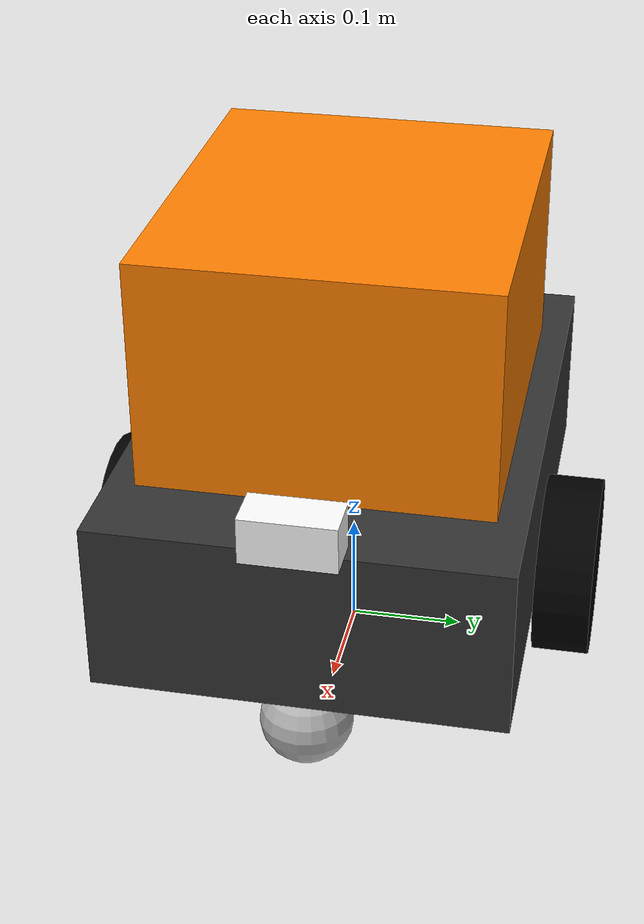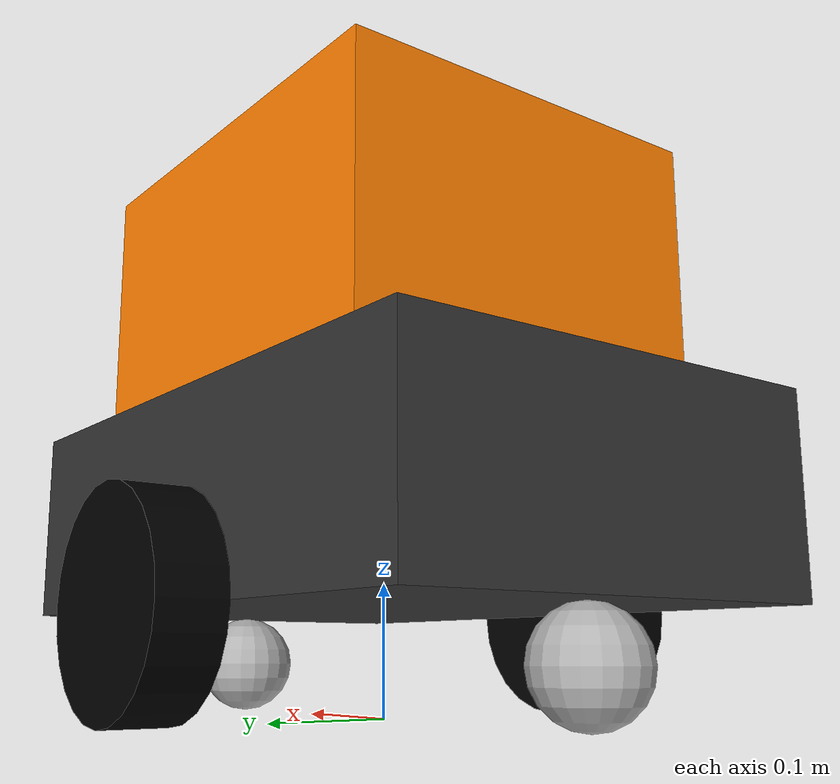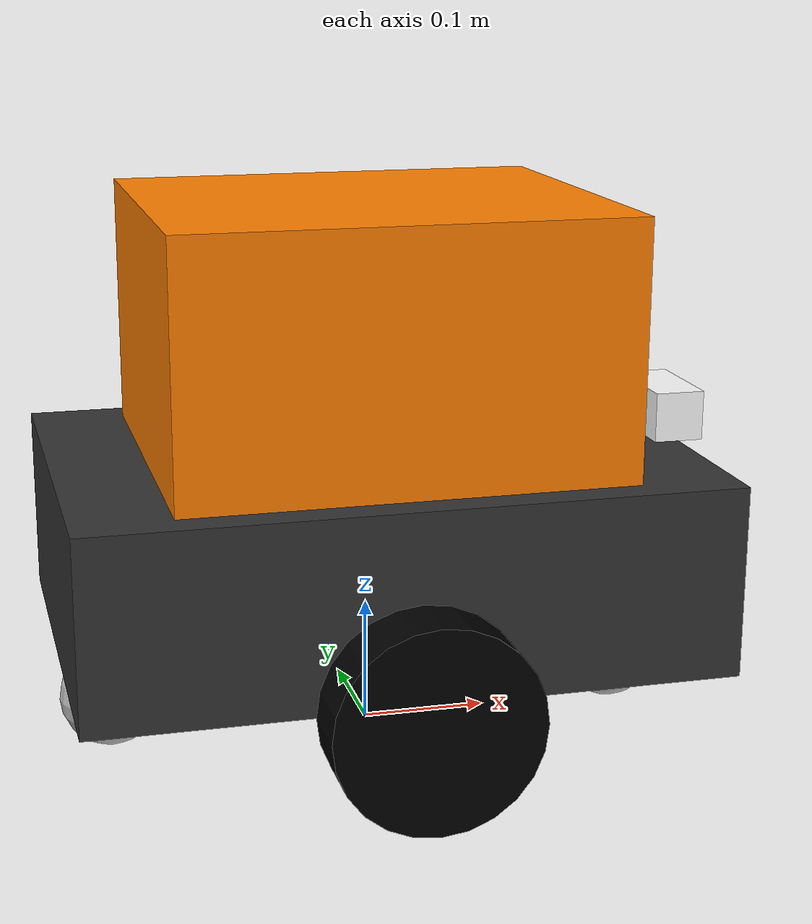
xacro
<?xml version="1.0"?>
<robot name="delivery_robot" xmlns:xacro="http://www.ros.org/wiki/xacro">

  <!-- ==================== PROPERTIES ==================== -->
  <xacro:property name="base_length" value="0.5"/>
  <xacro:property name="base_width"  value="0.35"/>
  <xacro:property name="base_height" value="0.15"/>
  <xacro:property name="base_mass"   value="10.0"/>

  <xacro:property name="wheel_radius" value="0.08"/>
  <xacro:property name="wheel_width"  value="0.05"/>
  <xacro:property name="wheel_mass"   value="1.0"/>
  <xacro:property name="wheel_separation" value="0.40"/>

  <xacro:property name="caster_radius" value="0.04"/>
  <xacro:property name="caster_mass"   value="0.3"/>

  <xacro:property name="lidar_mass"   value="0.2"/>
  <xacro:property name="camera_mass"  value="0.1"/>

  <!-- ==================== MATERIALS ==================== -->
  <material name="dark_grey">
    <color rgba="0.2 0.2 0.2 1.0"/>
  </material>
  <material name="light_grey">
    <color rgba="0.7 0.7 0.7 1.0"/>
  </material>
  <material name="orange">
    <color rgba="1.0 0.5 0.0 1.0"/>
  </material>
  <material name="black">
    <color rgba="0.0 0.0 0.0 1.0"/>
  </material>
  <material name="white">
    <color rgba="1.0 1.0 1.0 1.0"/>
  </material>
  <material name="blue">
    <color rgba="0.0 0.3 0.8 1.0"/>
  </material>

  <!-- ==================== MACROS ==================== -->
  <xacro:macro name="box_inertia" params="m l w h">
    <inertial>
      <mass value="${m}"/>
      <inertia
        ixx="${m*(w*w+h*h)/12}" ixy="0" ixz="0"
        iyy="${m*(l*l+h*h)/12}" iyz="0"
        izz="${m*(l*l+w*w)/12}"/>
    </inertial>
  </xacro:macro>

  <xacro:macro name="cylinder_inertia" params="m r h">
    <inertial>
      <mass value="${m}"/>
      <inertia
        ixx="${m*(3*r*r+h*h)/12}" ixy="0" ixz="0"
        iyy="${m*(3*r*r+h*h)/12}" iyz="0"
        izz="${m*r*r/2}"/>
    </inertial>
  </xacro:macro>

  <xacro:macro name="sphere_inertia" params="m r">
    <inertial>
      <mass value="${m}"/>
      <inertia
        ixx="${2*m*r*r/5}" ixy="0" ixz="0"
        iyy="${2*m*r*r/5}" iyz="0"
        izz="${2*m*r*r/5}"/>
    </inertial>
  </xacro:macro>

  <!-- ==================== BASE LINK ==================== -->
  <link name="base_footprint"/>

  <joint name="base_footprint_joint" type="fixed">
    <parent link="base_footprint"/>
    <child  link="base_link"/>
    <origin xyz="0 0 ${wheel_radius}" rpy="0 0 0"/>
  </joint>

  <link name="base_link">
    <visual>
      <origin xyz="0 0 ${base_height/2}" rpy="0 0 0"/>
      <geometry>
        <box size="${base_length} ${base_width} ${base_height}"/>
      </geometry>
      <material name="dark_grey"/>
    </visual>
    <collision>
      <origin xyz="0 0 ${base_height/2}" rpy="0 0 0"/>
      <geometry>
        <box size="${base_length} ${base_width} ${base_height}"/>
      </geometry>
    </collision>
    <xacro:box_inertia m="${base_mass}" l="${base_length}" w="${base_width}" h="${base_height}"/>
  </link>

  <!-- ==================== DELIVERY BOX ==================== -->
  <link name="cargo_box">
    <visual>
      <origin xyz="0 0 0.1" rpy="0 0 0"/>
      <geometry>
        <box size="0.35 0.30 0.20"/>
      </geometry>
      <material name="orange"/>
    </visual>
    <collision>
      <origin xyz="0 0 0.1" rpy="0 0 0"/>
      <geometry>
        <box size="0.35 0.30 0.20"/>
      </geometry>
    </collision>
    <xacro:box_inertia m="2.0" l="0.35" w="0.30" h="0.20"/>
  </link>

  <joint name="cargo_joint" type="fixed">
    <parent link="base_link"/>
    <child  link="cargo_box"/>
    <origin xyz="0 0 ${base_height}" rpy="0 0 0"/>
  </joint>

  <!-- ==================== WHEELS (macro) ==================== -->
  <xacro:macro name="wheel" params="prefix y_offset">
    <link name="${prefix}_wheel">
      <visual>
        <origin xyz="0 0 0" rpy="${pi/2} 0 0"/>
        <geometry>
          <cylinder radius="${wheel_radius}" length="${wheel_width}"/>
        </geometry>
        <material name="black"/>
      </visual>
      <collision>
        <origin xyz="0 0 0" rpy="${pi/2} 0 0"/>
        <geometry>
          <cylinder radius="${wheel_radius}" length="${wheel_width}"/>
        </geometry>
      </collision>
      <xacro:cylinder_inertia m="${wheel_mass}" r="${wheel_radius}" h="${wheel_width}"/>
    </link>

    <joint name="${prefix}_wheel_joint" type="continuous">
      <parent link="base_link"/>
      <child  link="${prefix}_wheel"/>
      <origin xyz="0 ${y_offset} 0" rpy="0 0 0"/>
      <axis xyz="0 1 0"/>
      <dynamics damping="0.1" friction="0.1"/>
    </joint>
  </xacro:macro>

  <xacro:wheel prefix="left"  y_offset=" ${wheel_separation/2}"/>
  <xacro:wheel prefix="right" y_offset="-${wheel_separation/2}"/>

  <!-- ==================== CASTER WHEELS ==================== -->
  <xacro:macro name="caster" params="prefix x_offset">
    <link name="${prefix}_caster">
      <visual>
        <origin xyz="0 0 0" rpy="0 0 0"/>
        <geometry>
          <sphere radius="${caster_radius}"/>
        </geometry>
        <material name="light_grey"/>
      </visual>
      <collision>
        <origin xyz="0 0 0" rpy="0 0 0"/>
        <geometry>
          <sphere radius="${caster_radius}"/>
        </geometry>
      </collision>
      <xacro:sphere_inertia m="${caster_mass}" r="${caster_radius}"/>
    </link>

    <joint name="${prefix}_caster_joint" type="fixed">
      <parent link="base_link"/>
      <child  link="${prefix}_caster"/>
      <origin xyz="${x_offset} 0 ${-wheel_radius+caster_radius}" rpy="0 0 0"/>
    </joint>
  </xacro:macro>

  <xacro:caster prefix="front" x_offset=" ${base_length/2 - caster_radius}"/>
  <xacro:caster prefix="rear"  x_offset="-${base_length/2 - caster_radius}"/>

  <!-- ==================== LIDAR ==================== -->
  <link name="lidar_link">
    <visual>
      <origin xyz="0 0 0" rpy="0 0 0"/>
      <geometry>
        <cylinder radius="0.04" length="0.07"/>
      </geometry>
      <material name="blue"/>
    </visual>
    <collision>
      <origin xyz="0 0 0" rpy="0 0 0"/>
      <geometry>
        <cylinder radius="0.04" length="0.07"/>
      </geometry>
    </collision>
    <xacro:cylinder_inertia m="${lidar_mass}" r="0.04" h="0.07"/>
  </link>

  <joint name="lidar_joint" type="fixed">
    <parent link="base_link"/>
    <child  link="lidar_link"/>
    <origin xyz="0.1 0 ${base_height + 0.04}" rpy="0 0 0"/>
  </joint>

  <!-- ==================== CAMERA ==================== -->
  <link name="camera_link">
    <visual>
      <origin xyz="0 0 0" rpy="0 0 0"/>
      <geometry>
        <box size="0.04 0.08 0.04"/>
      </geometry>
      <material name="white"/>
    </visual>
    <collision>
      <origin xyz="0 0 0" rpy="0 0 0"/>
      <geometry>
        <box size="0.04 0.08 0.04"/>
      </geometry>
    </collision>
    <xacro:box_inertia m="${camera_mass}" l="0.04" w="0.08" h="0.04"/>
  </link>

  <joint name="camera_joint" type="fixed">
    <parent link="base_link"/>
    <child  link="camera_link"/>
    <origin xyz="${base_length/2} 0 ${base_height + 0.02}" rpy="0 0 0"/>
  </joint>

  <link name="camera_optical_link"/>
  <joint name="camera_optical_joint" type="fixed">
    <parent link="camera_link"/>
    <child  link="camera_optical_link"/>
    <origin xyz="0 0 0" rpy="${-pi/2} 0 ${-pi/2}"/>
  </joint>

  <!-- ==================== GAZEBO PLUGINS ==================== -->

  <!-- Differential Drive Controller -->
  <gazebo>
    <plugin name="diff_drive" filename="libgazebo_ros_diff_drive.so">
      <ros>
        <namespace>/</namespace>
      </ros>
      <left_joint>left_wheel_joint</left_joint>
      <right_joint>right_wheel_joint</right_joint>
      <wheel_separation>${wheel_separation}</wheel_separation>
      <wheel_diameter>${2*wheel_radius}</wheel_diameter>
      <max_wheel_torque>20.0</max_wheel_torque>
      <max_wheel_acceleration>1.5</max_wheel_acceleration>
      <command_topic>cmd_vel</command_topic>
      <publish_odom>true</publish_odom>
      <publish_odom_tf>true</publish_odom_tf>
      <publish_wheel_tf>false</publish_wheel_tf>
      <odometry_topic>odom</odometry_topic>
      <odometry_frame>odom</odometry_frame>
      <robot_base_frame>base_footprint</robot_base_frame>
    </plugin>
  </gazebo>

  <!-- 2D LiDAR -->
  <gazebo reference="lidar_link">
    <sensor name="lidar" type="ray">
      <always_on>true</always_on>
      <visualize>true</visualize>
      <update_rate>30</update_rate>
      <ray>
        <scan>
          <horizontal>
            <samples>360</samples>
            <resolution>1</resolution>
            <min_angle>-3.14159</min_angle>
            <max_angle>3.14159</max_angle>
          </horizontal>
        </scan>
        <range>
          <min>0.12</min>
          <max>12.0</max>
          <resolution>0.01</resolution>
        </range>
        <noise>
          <type>gaussian</type>
          <mean>0.0</mean>
          <stddev>0.01</stddev>
        </noise>
      </ray>
      <plugin name="lidar_plugin" filename="libgazebo_ros_ray_sensor.so">
        <ros>
          <remapping>~/out:=scan</remapping>
        </ros>
        <output_type>sensor_msgs/LaserScan</output_type>
        <frame_name>lidar_link</frame_name>
      </plugin>
    </sensor>
    <material>Gazebo/Blue</material>
  </gazebo>

  <!-- RGB Camera -->
  <gazebo reference="camera_link">
    <sensor name="camera" type="camera">
      <always_on>true</always_on>
      <visualize>true</visualize>
      <update_rate>15</update_rate>
      <camera>
        <horizontal_fov>1.3962634</horizontal_fov>
        <image>
          <width>640</width>
          <height>480</height>
          <format>R8G8B8</format>
        </image>
        <clip>
          <near>0.05</near>
          <far>20.0</far>
        </clip>
        <noise>
          <type>gaussian</type>
          <mean>0.0</mean>
          <stddev>0.007</stddev>
        </noise>
      </camera>
      <plugin name="camera_plugin" filename="libgazebo_ros_camera.so">
        <ros>
          <remapping>image_raw:=camera/image_raw</remapping>
          <remapping>camera_info:=camera/camera_info</remapping>
        </ros>
        <camera_name>camera</camera_name>
        <frame_name>camera_optical_link</frame_name>
      </plugin>
    </sensor>
    <material>Gazebo/White</material>
  </gazebo>

  <!-- Base link material -->
  <gazebo reference="base_link">
    <material>Gazebo/DarkGrey</material>
  </gazebo>

  <gazebo reference="cargo_box">
    <material>Gazebo/Orange</material>
  </gazebo>

  <gazebo reference="left_wheel">
    <material>Gazebo/Black</material>
    <mu1>1.0</mu1>
    <mu2>1.0</mu2>
  </gazebo>

  <gazebo reference="right_wheel">
    <material>Gazebo/Black</material>
    <mu1>1.0</mu1>
    <mu2>1.0</mu2>
  </gazebo>

</robot>
